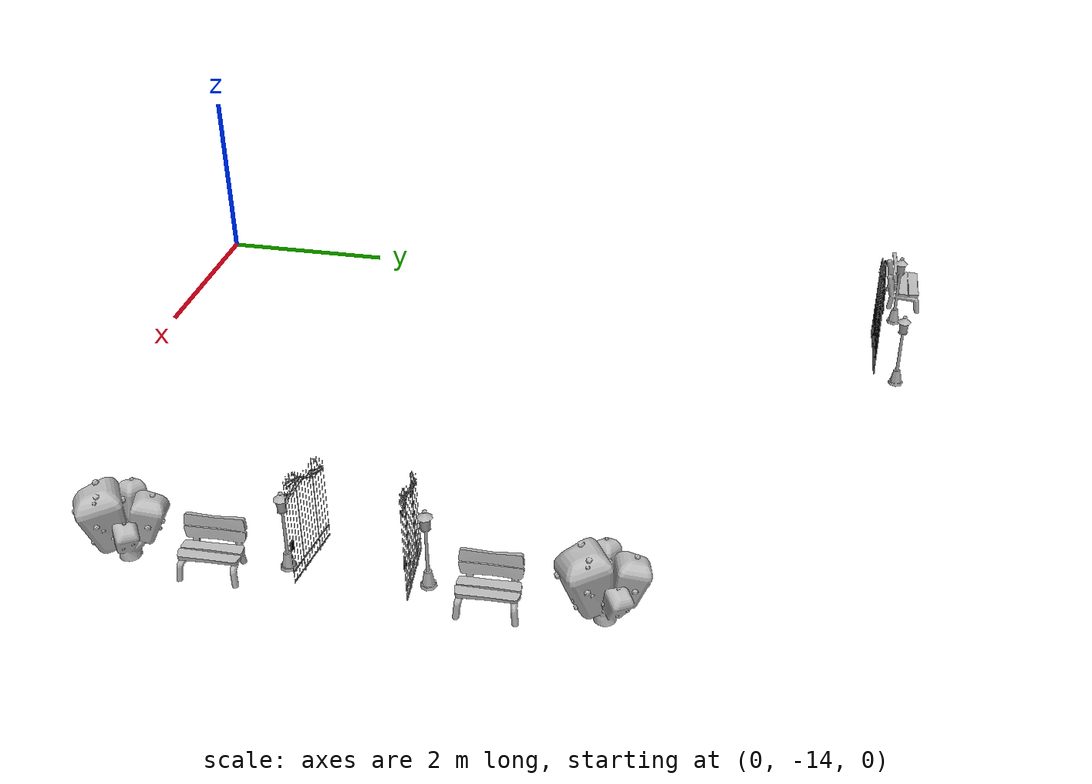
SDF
<?xml version="1.0" ?>
<sdf version="1.6">
  <model name="tree">
    <pose>0 0 0 0 0 0</pose>
    <static>true</static>
    <link name="body">
      <visual name="visual">
        <geometry>
          <mesh>
            <uri>model://tree/meshes/tree.dae</uri>
            <scale>0.0035 0.0035 0.0035</scale>
          </mesh>
        </geometry>
      </visual>
      <collision name="collision">
        <geometry>
          <mesh>
            <uri>model://tree/meshes/tree.dae</uri>
            <scale>0.0035 0.0035 0.0035</scale>
          </mesh>
        </geometry>
      </collision>
    </link>
  </model>
</sdf>
